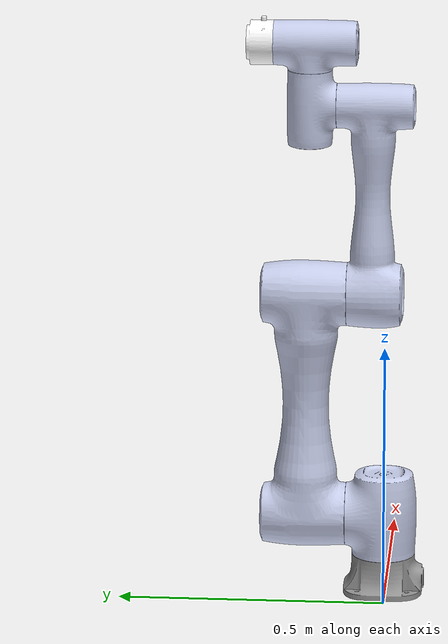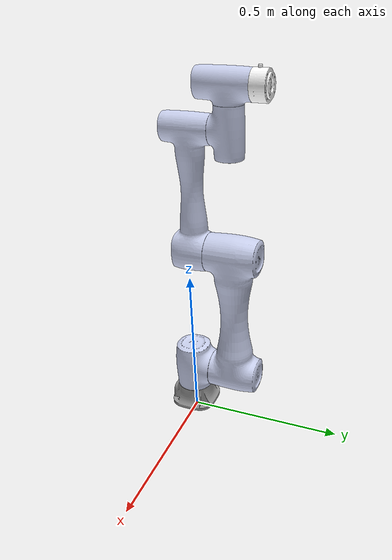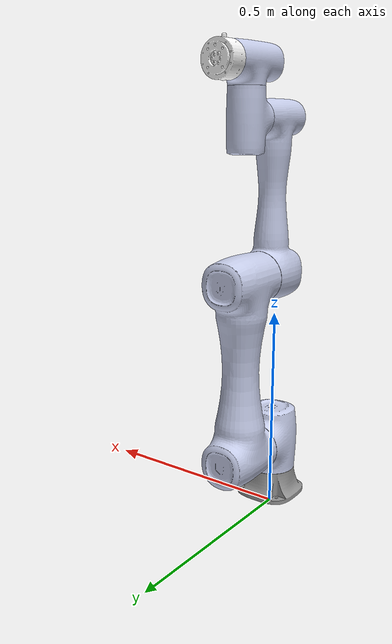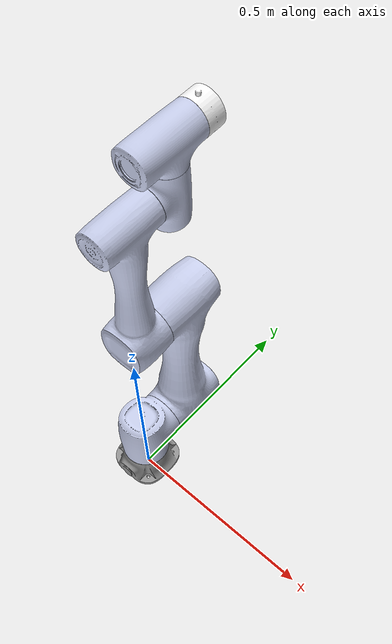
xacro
<?xml version="1.0"?>
<robot name="cr5af_robot" xmlns:xacro="http://ros.org/wiki/xacro">
  <link name="dummy_link" />
  <link
    name="base_link">
    <inertial>
      <origin
        xyz="8.1389E-06 -0.0019104 0.028995"
        rpy="0 0 0" />
      <mass
        value="1.1" />
      <inertia
        ixx="0.0014545"
        ixy="-4.324E-08"
        ixz="-1.8126E-07"
        iyy="0.001345"
        iyz="-6.2469E-06"
        izz="0.002155" />
    </inertial>
    <visual>
      <origin
        xyz="0 0 0"
        rpy="0 0 0" />
      <geometry>
        <mesh
          filename="file://$(find cra_description)/meshes/cr5af/base_link.STL" />
      </geometry>
      <material
        name="">
        <color
          rgba="0.59216 0.59216 0.59216 1" />
      </material>
    </visual>
    <collision>
      <origin
        xyz="0 0 0"
        rpy="0 0 0" />
      <geometry>
        <mesh
          filename="file://$(find cra_description)/meshes/cr5af/base_link.STL" />
      </geometry>
    </collision>
  </link>
    <link  name="world"/>
  <joint name="world_joint" type="fixed">
    <origin xyz="0 0 0.03" rpy="0 0 0" />
    <parent link="world" />
    <child  link="dummy_link" />
  </joint>
  <joint name="dummy_joint" type="fixed">
      <parent link="dummy_link" />
      <child  link="base_link" />
    </joint>
  <link
    name="Link1">
    <inertial>
      <origin
        xyz="-4.7455E-07 0.0032577 0.075323"
        rpy="0 0 0" />
      <mass
        value="5" />
      <inertia
        ixx="0.0053277"
        ixy="5.647E-08"
        ixz="-2.2604E-08"
        iyy="0.0051106"
        iyz="-9.2564E-05"
        izz="0.0034077" />
    </inertial>
    <visual>
      <origin
        xyz="0 0 0"
        rpy="0 0 0" />
      <geometry>
        <mesh
          filename="file://$(find cra_description)/meshes/cr5af/J1.STL" />
      </geometry>
      <material
        name="">
        <color
          rgba="0.79216 0.81961 0.93333 1" />
      </material>
    </visual>
    <collision>
      <origin
        xyz="0 0 0"
        rpy="0 0 0" />
      <geometry>
        <mesh
          filename="file://$(find cra_description)/meshes/cr5af/J1.STL" />
      </geometry>
    </collision>
  </link>
  <joint
    name="joint1"
    type="revolute">
    <origin
      xyz="0 0 0.064"
      rpy="0 0 0" />
    <parent
      link="base_link" />
    <child
      link="Link1" />
    <axis
      xyz="0 0 1" />
    <limit
      lower="-6.2831"
      upper="6.2831"
      effort="100"
      velocity="3.14" />
  </joint>
  <link
    name="Link2">
    <inertial>
      <origin
        xyz="0.00017389 0.078516 0.21351"
        rpy="0 0 0" />
      <mass
        value="11.9" />
      <inertia
        ixx="0.17347"
        ixy="-3.9709E-08"
        ixz="0.000131"
        iyy="0.16953"
        iyz="3.7334E-08"
        izz="0.013285" />
    </inertial>
    <visual>
      <origin
        xyz="0 0 0"
        rpy="0 0 0" />
      <geometry>
        <mesh
          filename="file://$(find cra_description)/meshes/cr5af/J2.STL" />
      </geometry>
      <material
        name="">
        <color
          rgba="0.79216 0.81961 0.93333 1" />
      </material>
    </visual>
    <collision>
      <origin
        xyz="0 0 0"
        rpy="0 0 0" />
      <geometry>
        <mesh
          filename="file://$(find cra_description)/meshes/cr5af/J2.STL" />
      </geometry>
    </collision>
  </link>
  <joint
    name="joint2"
    type="revolute">
    <origin
      xyz="0 0.064 0.083"
      rpy="0 0 0" />
    <parent
      link="Link1" />
    <child
      link="Link2" />
    <axis
      xyz="0 1 0" />
    <limit
      lower="-6.2831"
      upper="6.2831"
      effort="100"
      velocity="3.14" />
  </joint>
  <link
    name="Link3">
    <inertial>
      <origin
        xyz="-0.00015029 -0.048307 0.15228"
        rpy="0 0 0" />
      <mass
        value="3.87" />
      <inertia
        ixx="0.064798"
        ixy="-1.5455E-06"
        ixz="-5.9339E-05"
        iyy="0.064091"
        iyz="0.001556"
        izz="0.0042264" />
    </inertial>
    <visual>
      <origin
        xyz="0 0 0"
        rpy="0 0 0" />
      <geometry>
        <mesh
          filename="file://$(find cra_description)/meshes/cr5af/J3.STL" />
      </geometry>
      <material
        name="">
        <color
          rgba="0.79216 0.81961 0.93333 1" />
      </material>
    </visual>
    <collision>
      <origin
        xyz="0 0 0"
        rpy="0 0 0" />
      <geometry>
        <mesh
          filename="file://$(find cra_description)/meshes/cr5af/J3.STL" />
      </geometry>
    </collision>
  </link>
  <joint
    name="joint3"
    type="revolute">
    <origin
      xyz="0.00034991 0.007 0.42703"
      rpy="0 0 0" />
    <parent
      link="Link2" />
    <child
      link="Link3" />
    <axis
      xyz="0 1 0" />
    <limit
      lower="-2.7925"
      upper="2.7925"
      effort="100"
      velocity="3.89" />
  </joint>
  <link
    name="Link4">
    <inertial>
      <origin
        xyz="-2.894E-07 0.047446 0.0020777"
        rpy="0 0 0" />
      <mass
        value="2.07" />
      <inertia
        ixx="0.0016115"
        ixy="5.4436E-09"
        ixz="-4.7861E-09"
        iyy="0.0015715"
        iyz="-3.8502E-05"
        izz="0.00067853" />
    </inertial>
    <visual>
      <origin
        xyz="0 0 0"
        rpy="0 0 0" />
      <geometry>
        <mesh
          filename="file://$(find cra_description)/meshes/cr5af/J4.STL" />
      </geometry>
      <material
        name="">
        <color
          rgba="0.79216 0.81961 0.93333 1" />
      </material>
    </visual>
    <collision>
      <origin
        xyz="0 0 0"
        rpy="0 0 0" />
      <geometry>
        <mesh
          filename="file://$(find cra_description)/meshes/cr5af/J4.STL" />
      </geometry>
    </collision>
  </link>
  <joint
    name="joint4"
    type="revolute">
    <origin
      xyz="-0.00034988 0.021 0.35697"
      rpy="0 0 0" />
    <parent
      link="Link3" />
    <child
      link="Link4" />
    <axis
      xyz="0 1 0" />
    <limit
      lower="-6.2831"
      upper="6.2831"
      effort="100"
      velocity="3.89" />
  </joint>
  <link
    name="Link5">
    <inertial>
      <origin
        xyz="-2.9433E-07 -0.0072582 0.046677"
        rpy="0 0 0" />
      <mass
        value="2.1" />
      <inertia
        ixx="0.0021291"
        ixy="2.591E-08"
        ixz="-1.2719E-08"
        iyy="0.00088081"
        iyz="-2.0847E-05"
        izz="0.0020942" />
    </inertial>
    <visual>
      <origin
        xyz="0 0 0"
        rpy="0 0 0" />
      <geometry>
        <mesh
          filename="file://$(find cra_description)/meshes/cr5af/J5.STL" />
      </geometry>
      <material
        name="">
        <color
          rgba="0.79216 0.81961 0.93333 1" />
      </material>
    </visual>
    <collision>
      <origin
        xyz="0 0 0"
        rpy="0 0 0" />
      <geometry>
        <mesh
          filename="file://$(find cra_description)/meshes/cr5af/J5.STL" />
      </geometry>
    </collision>
  </link>
  <joint
    name="joint5"
    type="revolute">
    <origin
      xyz="0 0.049 0.067"
      rpy="0 0 0" />
    <parent
      link="Link4" />
    <child
      link="Link5" />
    <axis
      xyz="0 0 1" />
    <limit
      lower="-6.2831"
      upper="6.2831"
      effort="100"
      velocity="3.89" />
  </joint>
  <link
    name="Link6">
    <inertial>
      <origin
        xyz="1.019E-08 0.022777 8.8138E-05"
        rpy="0 0 0" />
      <mass
        value="0.27" />
      <inertia
        ixx="0.0001425"
        ixy="1.1102E-12"
        ixz="1.2175E-10"
        iyy="0.00019903"
        iyz="-2.2857E-07"
        izz="0.00014123" />
    </inertial>
    <visual>
      <origin
        xyz="0 0 0"
        rpy="0 0 0" />
      <geometry>
        <mesh
          filename="file://$(find cra_description)/meshes/cr5af/J6.STL" />
      </geometry>
      <material
        name="">
        <color
          rgba="1 1 1 1" />
      </material>
    </visual>
    <collision>
      <origin
        xyz="0 0 0"
        rpy="0 0 0" />
      <geometry>
        <mesh
          filename="file://$(find cra_description)/meshes/cr5af/J6.STL" />
      </geometry>
    </collision>
  </link>
  <joint
    name="joint6"
    type="revolute">
    <origin
      xyz="0 0.0665 0.049"
      rpy="0 0 0" />
    <parent
      link="Link5" />
    <child
      link="Link6" />
    <axis
      xyz="0 1 0" />
    <limit
      lower="-6.2831"
      upper="6.2831"
      effort="100"
      velocity="3.89" />
  </joint>
  <link name="tool0"/>
  <joint name="tool_joint" type="fixed">
    <origin xyz="0 0 0" rpy="4.7124 0 3.14159" />
    <parent link="Link6" />
    <child link="tool0" />
  </joint>
  <gazebo reference="base_link">
        <gravity>false</gravity>
        <selfCollide>true</selfCollide>
    </gazebo>
    <gazebo reference="Link1">
        <gravity>false</gravity>
        <selfCollide>true</selfCollide>
    </gazebo>
    <gazebo reference="Link2">
        <gravity>false</gravity>
        <selfCollide>true</selfCollide>
    </gazebo>
    <gazebo reference="Link3">
        <gravity>false</gravity>
        <selfCollide>true</selfCollide>
    </gazebo>
    <gazebo reference="Link4">
        <gravity>false</gravity>
        <selfCollide>true</selfCollide>
    </gazebo>
    <gazebo reference="Link5">
        <gravity>false</gravity>
        <selfCollide>true</selfCollide>
    </gazebo>
    <gazebo reference="Link6">
        <gravity>false</gravity>
        <selfCollide>true</selfCollide>
    </gazebo>
    <!-- 在运行demo.launch.py时，需要注释这个ros2_control节点，因为它使用了xxx.ros2_control.xacro来生成了ros2_control节点-->
    <ros2_control name="GazeboSystem" type="system">
        <hardware>
            <plugin>gazebo_ros2_control/GazeboSystem</plugin>
        </hardware>
        <joint name="joint1">
            <command_interface name="position">
                <param name="min">-1</param>
                <param name="max">1</param>
            </command_interface>
            <state_interface name="position">
                <param name="initial_value">0.0</param>
            </state_interface>
            <state_interface name="velocity"/>
        </joint>
        <joint name="joint2">
            <command_interface name="position">
                <param name="min">-1</param>
                <param name="max">1</param>
            </command_interface>
            <state_interface name="position">
                <param name="initial_value">0.0</param>
            </state_interface>
            <state_interface name="velocity"/>
        </joint>
        <joint name="joint3">
            <command_interface name="position">
                <param name="min">-1</param>
                <param name="max">1</param>
            </command_interface>
            <state_interface name="position">
                <param name="initial_value">0.0</param>
            </state_interface>
            <state_interface name="velocity"/>
        </joint>
        <joint name="joint4">
            <command_interface name="position">
                <param name="min">-1</param>
                <param name="max">1</param>
            </command_interface>
            <state_interface name="position">
                <param name="initial_value">0.0</param>
            </state_interface>
            <state_interface name="velocity"/>
        </joint>
        <joint name="joint5">
            <command_interface name="position">
                <param name="min">-1</param>
                <param name="max">1</param>
            </command_interface>
            <state_interface name="position">
                <param name="initial_value">0.0</param>
            </state_interface>
            <state_interface name="velocity"/>
        </joint>
        <joint name="joint6">
            <command_interface name="position">
                <param name="min">-1</param>
                <param name="max">1</param>
            </command_interface>
            <state_interface name="position">
                <param name="initial_value">0.0</param>
            </state_interface>
            <state_interface name="velocity"/>
        </joint>
    </ros2_control>

    <gazebo>
        <plugin filename="libgazebo_ros2_control.so" name="gazebo_ros2_control">
            <parameters>$(find cr5af_moveit)/config/ros2_controllers.yaml</parameters>
            <robot_param_node>robot_state_publisher</robot_param_node>
        </plugin>
    </gazebo>
</robot>
